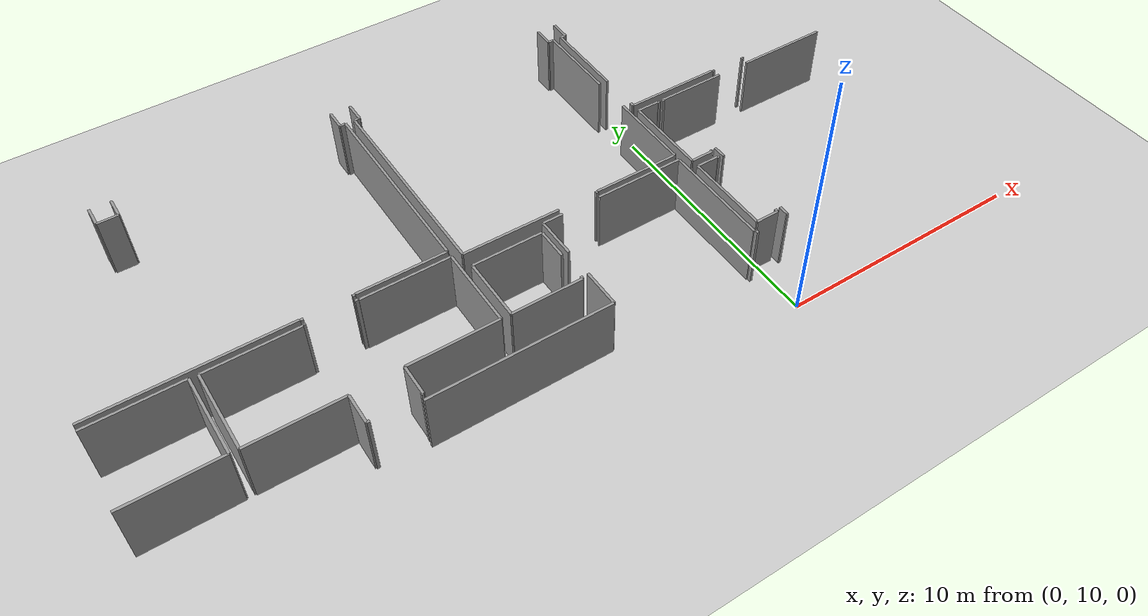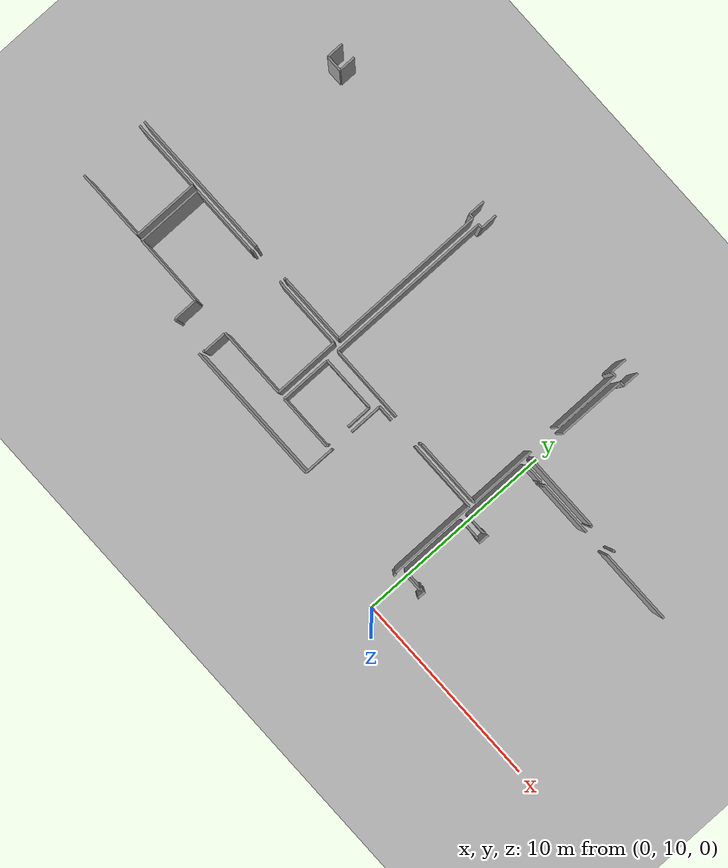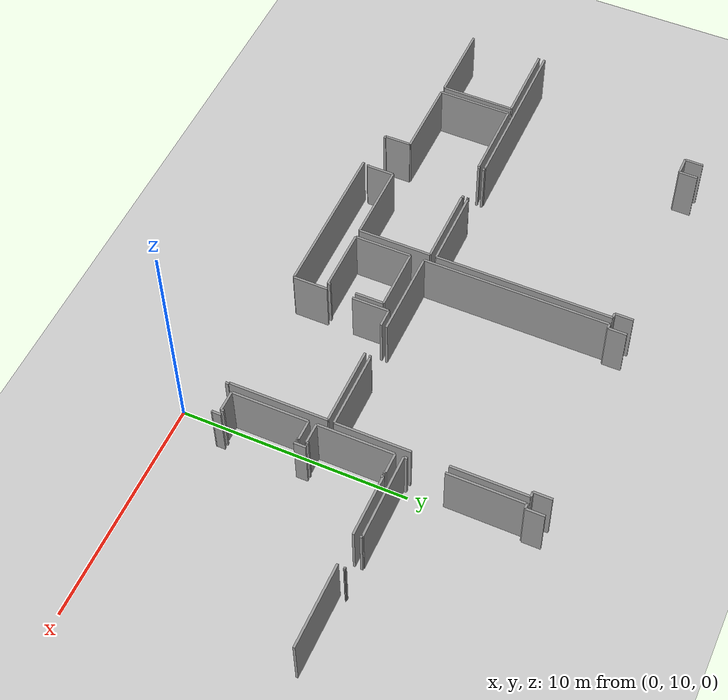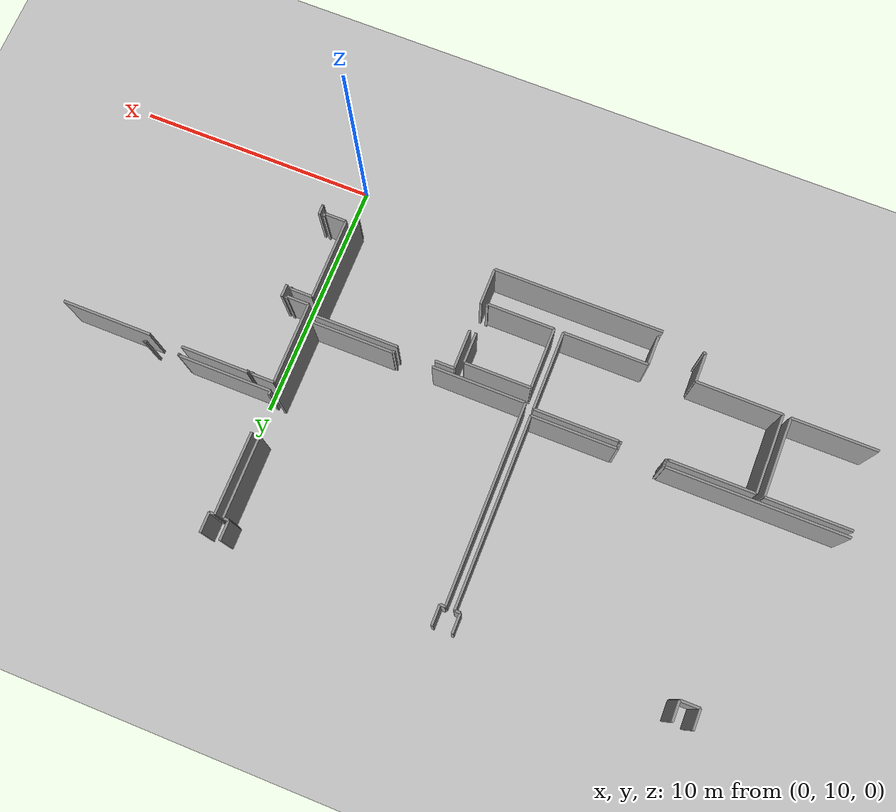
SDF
<sdf version="1.6">
 <world name="default">
  <model name="ground_plane">
   <static>1</static>
   <link name="link">
    <collision name="collision">
     <geometry><plane><normal>0 0 1</normal><size>100 100</size></plane></geometry>
     <surface><friction><ode><mu>100</mu><mu2>50</mu2></ode></friction></surface>
    </collision>
    <visual name="visual">
     <cast_shadows>0</cast_shadows>
     <geometry><plane><normal>0 0 1</normal><size>100 100</size></plane></geometry>
     <material>
      <script><uri>file://media/materials/scripts/gazebo.material</uri><name>Gazebo/Grey</name></script>
     </material>
    </visual>
   </link>
  </model>
  <model name="50045368">
   <static>1</static>
   <link name="Wall_54">
    <collision name="Wall_54_Collision">
     <geometry><box><size>0.822871664549 0.1 2.5</size></box></geometry>
     <pose>0.411435832274 0 1.25 0 0 0</pose>
    </collision>
    <visual name="Wall_54_Visual">
     <pose>0.411435832274 0 1.25 0 0 0</pose>
     <geometry><box><size>0.822871664549 0.1 2.5</size></box></geometry>
     <material>
      <script><uri>file://media/materials/scripts/gazebo.material</uri><name>Gazebo/Grey</name></script>
      <ambient>1 1 1 1</ambient>
     </material>
    </visual>
    <pose>33.4510800508 -0.0 0 0 0 -1.57079632679</pose>
   </link>
   <link name="Wall_55">
    <collision name="Wall_55_Collision">
     <geometry><box><size>0.791994917408 0.1 2.5</size></box></geometry>
     <pose>0.395997458704 0 1.25 0 0 0</pose>
    </collision>
    <visual name="Wall_55_Visual">
     <pose>0.395997458704 0 1.25 0 0 0</pose>
     <geometry><box><size>0.791994917408 0.1 2.5</size></box></geometry>
     <material>
      <script><uri>file://media/materials/scripts/gazebo.material</uri><name>Gazebo/Grey</name></script>
      <ambient>1 1 1 1</ambient>
     </material>
    </visual>
    <pose>33.4510800508 -0.822871664549 0 0 0 0.0</pose>
   </link>
   <link name="Wall_56">
    <collision name="Wall_56_Collision">
     <geometry><box><size>0.821601016518 0.1 2.5</size></box></geometry>
     <pose>0.410800508259 0 1.25 0 0 0</pose>
    </collision>
    <visual name="Wall_56_Visual">
     <pose>0.410800508259 0 1.25 0 0 0</pose>
     <geometry><box><size>0.821601016518 0.1 2.5</size></box></geometry>
     <material>
      <script><uri>file://media/materials/scripts/gazebo.material</uri><name>Gazebo/Grey</name></script>
      <ambient>1 1 1 1</ambient>
     </material>
    </visual>
    <pose>34.2430749682 -0.822871664549 0 0 0 1.57079632679</pose>
   </link>
   <link name="Wall_57">
    <collision name="Wall_57_Collision">
     <geometry><box><size>0.816899618806 0.1 2.5</size></box></geometry>
     <pose>0.408449809403 0 1.25 0 0 0</pose>
    </collision>
    <visual name="Wall_57_Visual">
     <pose>0.408449809403 0 1.25 0 0 0</pose>
     <geometry><box><size>0.816899618806 0.1 2.5</size></box></geometry>
     <material>
      <script><uri>file://media/materials/scripts/gazebo.material</uri><name>Gazebo/Grey</name></script>
      <ambient>1 1 1 1</ambient>
     </material>
    </visual>
    <pose>42.690343075 -0.00127064803049 0 0 0 -1.57079632679</pose>
   </link>
   <link name="Wall_58">
    <collision name="Wall_58_Collision">
     <geometry><box><size>0.228462515883 0.1 2.5</size></box></geometry>
     <pose>0.114231257942 0 1.25 0 0 0</pose>
    </collision>
    <visual name="Wall_58_Visual">
     <pose>0.114231257942 0 1.25 0 0 0</pose>
     <geometry><box><size>0.228462515883 0.1 2.5</size></box></geometry>
     <material>
      <script><uri>file://media/materials/scripts/gazebo.material</uri><name>Gazebo/Grey</name></script>
      <ambient>1 1 1 1</ambient>
     </material>
    </visual>
    <pose>42.690343075 -0.818170266836 0 0 0 0.0</pose>
   </link>
   <link name="Wall_59">
    <collision name="Wall_59_Collision">
     <geometry><box><size>7.85349428208 0.1 2.5</size></box></geometry>
     <pose>3.92674714104 0 1.25 0 0 0</pose>
    </collision>
    <visual name="Wall_59_Visual">
     <pose>3.92674714104 0 1.25 0 0 0</pose>
     <geometry><box><size>7.85349428208 0.1 2.5</size></box></geometry>
     <material>
      <script><uri>file://media/materials/scripts/gazebo.material</uri><name>Gazebo/Grey</name></script>
      <ambient>1 1 1 1</ambient>
     </material>
    </visual>
    <pose>42.9188055909 -0.818170266836 0 0 0 -1.57079632679</pose>
   </link>
   <link name="Wall_60">
    <collision name="Wall_60_Collision">
     <geometry><box><size>3.45794155019 0.1 2.5</size></box></geometry>
     <pose>1.7289707751 0 1.25 0 0 0</pose>
    </collision>
    <visual name="Wall_60_Visual">
     <pose>1.7289707751 0 1.25 0 0 0</pose>
     <geometry><box><size>3.45794155019 0.1 2.5</size></box></geometry>
     <material>
      <script><uri>file://media/materials/scripts/gazebo.material</uri><name>Gazebo/Grey</name></script>
      <ambient>1 1 1 1</ambient>
     </material>
    </visual>
    <pose>42.9188055909 -8.67166454892 0 0 0 3.14159265359</pose>
   </link>
   <link name="Wall_61">
    <collision name="Wall_61_Collision">
     <geometry><box><size>0.0241423125794 0.1 2.5</size></box></geometry>
     <pose>0.0120711562897 0 1.25 0 0 0</pose>
    </collision>
    <visual name="Wall_61_Visual">
     <pose>0.0120711562897 0 1.25 0 0 0</pose>
     <geometry><box><size>0.0241423125794 0.1 2.5</size></box></geometry>
     <material>
      <script><uri>file://media/materials/scripts/gazebo.material</uri><name>Gazebo/Grey</name></script>
      <ambient>1 1 1 1</ambient>
     </material>
    </visual>
    <pose>39.4608640407 -8.67166454892 0 0 0 -1.57079632679</pose>
   </link>
   <link name="Wall_62">
    <collision name="Wall_62_Collision">
     <geometry><box><size>0.0997458703939 0.1 2.5</size></box></geometry>
     <pose>0.0498729351969 0 1.25 0 0 0</pose>
    </collision>
    <visual name="Wall_62_Visual">
     <pose>0.0498729351969 0 1.25 0 0 0</pose>
     <geometry><box><size>0.0997458703939 0.1 2.5</size></box></geometry>
     <material>
      <script><uri>file://media/materials/scripts/gazebo.material</uri><name>Gazebo/Grey</name></script>
      <ambient>1 1 1 1</ambient>
     </material>
    </visual>
    <pose>39.4608640407 -8.6958068615 0 0 0 3.14159265359</pose>
   </link>
   <link name="Wall_63">
    <collision name="Wall_63_Collision">
     <geometry><box><size>0.114612452351 0.1 2.5</size></box></geometry>
     <pose>0.0573062261753 0 1.25 0 0 0</pose>
    </collision>
    <visual name="Wall_63_Visual">
     <pose>0.0573062261753 0 1.25 0 0 0</pose>
     <geometry><box><size>0.114612452351 0.1 2.5</size></box></geometry>
     <material>
      <script><uri>file://media/materials/scripts/gazebo.material</uri><name>Gazebo/Grey</name></script>
      <ambient>1 1 1 1</ambient>
     </material>
    </visual>
    <pose>37.6269377382 -8.6958068615 0 0 0 3.14159265359</pose>
   </link>
   <link name="Wall_64">
    <collision name="Wall_64_Collision">
     <geometry><box><size>0.0235069885642 0.1 2.5</size></box></geometry>
     <pose>0.0117534942821 0 1.25 0 0 0</pose>
    </collision>
    <visual name="Wall_64_Visual">
     <pose>0.0117534942821 0 1.25 0 0 0</pose>
     <geometry><box><size>0.0235069885642 0.1 2.5</size></box></geometry>
     <material>
      <script><uri>file://media/materials/scripts/gazebo.material</uri><name>Gazebo/Grey</name></script>
      <ambient>1 1 1 1</ambient>
     </material>
    </visual>
    <pose>37.5123252859 -8.6958068615 0 0 0 1.57079632679</pose>
   </link>
   <link name="Wall_65">
    <collision name="Wall_65_Collision">
     <geometry><box><size>7.29707750953 0.1 2.5</size></box></geometry>
     <pose>3.64853875476 0 1.25 0 0 0</pose>
    </collision>
    <visual name="Wall_65_Visual">
     <pose>3.64853875476 0 1.25 0 0 0</pose>
     <geometry><box><size>7.29707750953 0.1 2.5</size></box></geometry>
     <material>
      <script><uri>file://media/materials/scripts/gazebo.material</uri><name>Gazebo/Grey</name></script>
      <ambient>1 1 1 1</ambient>
     </material>
    </visual>
    <pose>37.5123252859 -8.67229987294 0 0 0 3.14159265359</pose>
   </link>
   <link name="Wall_77">
    <collision name="Wall_77_Collision">
     <geometry><box><size>3.48005082592 0.1 2.5</size></box></geometry>
     <pose>1.74002541296 0 1.25 0 0 0</pose>
    </collision>
    <visual name="Wall_77_Visual">
     <pose>1.74002541296 0 1.25 0 0 0</pose>
     <geometry><box><size>3.48005082592 0.1 2.5</size></box></geometry>
     <material>
      <script><uri>file://media/materials/scripts/gazebo.material</uri><name>Gazebo/Grey</name></script>
      <ambient>1 1 1 1</ambient>
     </material>
    </visual>
    <pose>30.218043202 -8.94193138501 0 0 0 0.0</pose>
   </link>
   <link name="Wall_78">
    <collision name="Wall_78_Collision">
     <geometry><box><size>3.25641677255 0.1 2.5</size></box></geometry>
     <pose>1.62820838628 0 1.25 0 0 0</pose>
    </collision>
    <visual name="Wall_78_Visual">
     <pose>1.62820838628 0 1.25 0 0 0</pose>
     <geometry><box><size>3.25641677255 0.1 2.5</size></box></geometry>
     <material>
      <script><uri>file://media/materials/scripts/gazebo.material</uri><name>Gazebo/Grey</name></script>
      <ambient>1 1 1 1</ambient>
     </material>
    </visual>
    <pose>33.698094028 -8.94193138501 0 0 0 -1.57079632679</pose>
   </link>
   <link name="Wall_79">
    <collision name="Wall_79_Collision">
     <geometry><box><size>3.49555273189 0.1 2.5</size></box></geometry>
     <pose>1.74777636595 0 1.25 0 0 0</pose>
    </collision>
    <visual name="Wall_79_Visual">
     <pose>1.74777636595 0 1.25 0 0 0</pose>
     <geometry><box><size>3.49555273189 0.1 2.5</size></box></geometry>
     <material>
      <script><uri>file://media/materials/scripts/gazebo.material</uri><name>Gazebo/Grey</name></script>
      <ambient>1 1 1 1</ambient>
     </material>
    </visual>
    <pose>33.698094028 -12.1983481576 0 0 0 3.14159265359</pose>
   </link>
   <link name="Wall_85">
    <collision name="Wall_85_Collision">
     <geometry><box><size>3.25590851334 0.1 2.5</size></box></geometry>
     <pose>1.62795425667 0 1.25 0 0 0</pose>
    </collision>
    <visual name="Wall_85_Visual">
     <pose>1.62795425667 0 1.25 0 0 0</pose>
     <geometry><box><size>3.25590851334 0.1 2.5</size></box></geometry>
     <material>
      <script><uri>file://media/materials/scripts/gazebo.material</uri><name>Gazebo/Grey</name></script>
      <ambient>1 1 1 1</ambient>
     </material>
    </visual>
    <pose>34.0094027954 -12.214866582 0 0 0 1.57079632679</pose>
   </link>
   <link name="Wall_86">
    <collision name="Wall_86_Collision">
     <geometry><box><size>3.49529860229 0.1 2.5</size></box></geometry>
     <pose>1.74764930114 0 1.25 0 0 0</pose>
    </collision>
    <visual name="Wall_86_Visual">
     <pose>1.74764930114 0 1.25 0 0 0</pose>
     <geometry><box><size>3.49529860229 0.1 2.5</size></box></geometry>
     <material>
      <script><uri>file://media/materials/scripts/gazebo.material</uri><name>Gazebo/Grey</name></script>
      <ambient>1 1 1 1</ambient>
     </material>
    </visual>
    <pose>34.0094027954 -8.95895806861 0 0 0 0.0</pose>
   </link>
   <link name="Wall_87">
    <collision name="Wall_87_Collision">
     <geometry><box><size>0.0326556543837 0.1 2.5</size></box></geometry>
     <pose>0.0163278271919 0 1.25 0 0 0</pose>
    </collision>
    <visual name="Wall_87_Visual">
     <pose>0.0163278271919 0 1.25 0 0 0</pose>
     <geometry><box><size>0.0326556543837 0.1 2.5</size></box></geometry>
     <material>
      <script><uri>file://media/materials/scripts/gazebo.material</uri><name>Gazebo/Grey</name></script>
      <ambient>1 1 1 1</ambient>
     </material>
    </visual>
    <pose>37.5047013977 -8.95895806861 0 0 0 1.57079632679</pose>
   </link>
   <link name="Wall_88">
    <collision name="Wall_88_Collision">
     <geometry><box><size>0.103684879288 0.1 2.5</size></box></geometry>
     <pose>0.0518424396442 0 1.25 0 0 0</pose>
    </collision>
    <visual name="Wall_88_Visual">
     <pose>0.0518424396442 0 1.25 0 0 0</pose>
     <geometry><box><size>0.103684879288 0.1 2.5</size></box></geometry>
     <material>
      <script><uri>file://media/materials/scripts/gazebo.material</uri><name>Gazebo/Grey</name></script>
      <ambient>1 1 1 1</ambient>
     </material>
    </visual>
    <pose>37.5047013977 -8.92630241423 0 0 0 0.0</pose>
   </link>
   <link name="Wall_89">
    <collision name="Wall_89_Collision">
     <geometry><box><size>0.120457433291 0.1 2.5</size></box></geometry>
     <pose>0.0602287166455 0 1.25 0 0 0</pose>
    </collision>
    <visual name="Wall_89_Visual">
     <pose>0.0602287166455 0 1.25 0 0 0</pose>
     <geometry><box><size>0.120457433291 0.1 2.5</size></box></geometry>
     <material>
      <script><uri>file://media/materials/scripts/gazebo.material</uri><name>Gazebo/Grey</name></script>
      <ambient>1 1 1 1</ambient>
     </material>
    </visual>
    <pose>39.3407878018 -8.92630241423 0 0 0 0.0</pose>
   </link>
   <link name="Wall_90">
    <collision name="Wall_90_Collision">
     <geometry><box><size>0.0259212198221 0.1 2.5</size></box></geometry>
     <pose>0.0129606099111 0 1.25 0 0 0</pose>
    </collision>
    <visual name="Wall_90_Visual">
     <pose>0.0129606099111 0 1.25 0 0 0</pose>
     <geometry><box><size>0.0259212198221 0.1 2.5</size></box></geometry>
     <material>
      <script><uri>file://media/materials/scripts/gazebo.material</uri><name>Gazebo/Grey</name></script>
      <ambient>1 1 1 1</ambient>
     </material>
    </visual>
    <pose>39.4612452351 -8.92630241423 0 0 0 -1.57079632679</pose>
   </link>
   <link name="Wall_91">
    <collision name="Wall_91_Collision">
     <geometry><box><size>3.45285895807 0.1 2.5</size></box></geometry>
     <pose>1.72642947903 0 1.25 0 0 0</pose>
    </collision>
    <visual name="Wall_91_Visual">
     <pose>1.72642947903 0 1.25 0 0 0</pose>
     <geometry><box><size>3.45285895807 0.1 2.5</size></box></geometry>
     <material>
      <script><uri>file://media/materials/scripts/gazebo.material</uri><name>Gazebo/Grey</name></script>
      <ambient>1 1 1 1</ambient>
     </material>
    </visual>
    <pose>39.4612452351 -8.95222363405 0 0 0 0.0</pose>
   </link>
   <link name="Wall_92">
    <collision name="Wall_92_Collision">
     <geometry><box><size>3.25705209657 0.1 2.5</size></box></geometry>
     <pose>1.62852604828 0 1.25 0 0 0</pose>
    </collision>
    <visual name="Wall_92_Visual">
     <pose>1.62852604828 0 1.25 0 0 0</pose>
     <geometry><box><size>3.25705209657 0.1 2.5</size></box></geometry>
     <material>
      <script><uri>file://media/materials/scripts/gazebo.material</uri><name>Gazebo/Grey</name></script>
      <ambient>1 1 1 1</ambient>
     </material>
    </visual>
    <pose>42.9141041931 -8.95222363405 0 0 0 -1.57079632679</pose>
   </link>
   <link name="Wall_93">
    <collision name="Wall_93_Collision">
     <geometry><box><size>3.47458703939 0.1 2.5</size></box></geometry>
     <pose>1.7372935197 0 1.25 0 0 0</pose>
    </collision>
    <visual name="Wall_93_Visual">
     <pose>1.7372935197 0 1.25 0 0 0</pose>
     <geometry><box><size>3.47458703939 0.1 2.5</size></box></geometry>
     <material>
      <script><uri>file://media/materials/scripts/gazebo.material</uri><name>Gazebo/Grey</name></script>
      <ambient>1 1 1 1</ambient>
     </material>
    </visual>
    <pose>42.9141041931 -12.2092757306 0 0 0 3.14159265359</pose>
   </link>
   <link name="Wall_94">
    <collision name="Wall_94_Collision">
     <geometry><box><size>1.21410419314 0.1 2.5</size></box></geometry>
     <pose>0.607052096569 0 1.25 0 0 0</pose>
    </collision>
    <visual name="Wall_94_Visual">
     <pose>0.607052096569 0 1.25 0 0 0</pose>
     <geometry><box><size>1.21410419314 0.1 2.5</size></box></geometry>
     <material>
      <script><uri>file://media/materials/scripts/gazebo.material</uri><name>Gazebo/Grey</name></script>
      <ambient>1 1 1 1</ambient>
     </material>
    </visual>
    <pose>39.4395171537 -12.2092757306 0 0 0 -1.57079632679</pose>
   </link>
   <link name="Wall_95">
    <collision name="Wall_95_Collision">
     <geometry><box><size>0.0761118170267 0.1 2.5</size></box></geometry>
     <pose>0.0380559085133 0 1.25 0 0 0</pose>
    </collision>
    <visual name="Wall_95_Visual">
     <pose>0.0380559085133 0 1.25 0 0 0</pose>
     <geometry><box><size>0.0761118170267 0.1 2.5</size></box></geometry>
     <material>
      <script><uri>file://media/materials/scripts/gazebo.material</uri><name>Gazebo/Grey</name></script>
      <ambient>1 1 1 1</ambient>
     </material>
    </visual>
    <pose>39.4395171537 -13.4233799238 0 0 0 3.14159265359</pose>
   </link>
   <link name="Wall_96">
    <collision name="Wall_96_Collision">
     <geometry><box><size>0.111944091487 0.1 2.5</size></box></geometry>
     <pose>0.0559720457433 0 1.25 0 0 0</pose>
    </collision>
    <visual name="Wall_96_Visual">
     <pose>0.0559720457433 0 1.25 0 0 0</pose>
     <geometry><box><size>0.111944091487 0.1 2.5</size></box></geometry>
     <material>
      <script><uri>file://media/materials/scripts/gazebo.material</uri><name>Gazebo/Grey</name></script>
      <ambient>1 1 1 1</ambient>
     </material>
    </visual>
    <pose>37.6331639136 -13.4233799238 0 0 0 3.14159265359</pose>
   </link>
   <link name="Wall_97">
    <collision name="Wall_97_Collision">
     <geometry><box><size>1.18945362135 0.1 2.5</size></box></geometry>
     <pose>0.594726810673 0 1.25 0 0 0</pose>
    </collision>
    <visual name="Wall_97_Visual">
     <pose>0.594726810673 0 1.25 0 0 0</pose>
     <geometry><box><size>1.18945362135 0.1 2.5</size></box></geometry>
     <material>
      <script><uri>file://media/materials/scripts/gazebo.material</uri><name>Gazebo/Grey</name></script>
      <ambient>1 1 1 1</ambient>
     </material>
    </visual>
    <pose>37.5212198221 -13.4233799238 0 0 0 1.57079632679</pose>
   </link>
   <link name="Wall_98">
    <collision name="Wall_98_Collision">
     <geometry><box><size>3.51186874781 0.1 2.5</size></box></geometry>
     <pose>1.75593437391 0 1.25 0 0 0</pose>
    </collision>
    <visual name="Wall_98_Visual">
     <pose>1.75593437391 0 1.25 0 0 0</pose>
     <geometry><box><size>3.51186874781 0.1 2.5</size></box></geometry>
     <material>
      <script><uri>file://media/materials/scripts/gazebo.material</uri><name>Gazebo/Grey</name></script>
      <ambient>1 1 1 1</ambient>
     </material>
    </visual>
    <pose>37.5212198221 -12.2339263024 0 0 0 3.13616539665</pose>
   </link>
   <link name="Wall_99">
    <collision name="Wall_99_Collision">
     <geometry><box><size>8.24345616264 0.1 2.5</size></box></geometry>
     <pose>4.12172808132 0 1.25 0 0 0</pose>
    </collision>
    <visual name="Wall_99_Visual">
     <pose>4.12172808132 0 1.25 0 0 0</pose>
     <geometry><box><size>8.24345616264 0.1 2.5</size></box></geometry>
     <material>
      <script><uri>file://media/materials/scripts/gazebo.material</uri><name>Gazebo/Grey</name></script>
      <ambient>1 1 1 1</ambient>
     </material>
    </visual>
    <pose>43.2833545108 -9.06861499365 0 0 0 1.57079632679</pose>
   </link>
   <link name="Wall_100">
    <collision name="Wall_100_Collision">
     <geometry><box><size>0.213087674714 0.1 2.5</size></box></geometry>
     <pose>0.106543837357 0 1.25 0 0 0</pose>
    </collision>
    <visual name="Wall_100_Visual">
     <pose>0.106543837357 0 1.25 0 0 0</pose>
     <geometry><box><size>0.213087674714 0.1 2.5</size></box></geometry>
     <material>
      <script><uri>file://media/materials/scripts/gazebo.material</uri><name>Gazebo/Grey</name></script>
      <ambient>1 1 1 1</ambient>
     </material>
    </visual>
    <pose>43.2833545108 -0.825158831004 0 0 0 0.0</pose>
   </link>
   <link name="Wall_101">
    <collision name="Wall_101_Collision">
     <geometry><box><size>0.821219822109 0.1 2.5</size></box></geometry>
     <pose>0.410609911055 0 1.25 0 0 0</pose>
    </collision>
    <visual name="Wall_101_Visual">
     <pose>0.410609911055 0 1.25 0 0 0</pose>
     <geometry><box><size>0.821219822109 0.1 2.5</size></box></geometry>
     <material>
      <script><uri>file://media/materials/scripts/gazebo.material</uri><name>Gazebo/Grey</name></script>
      <ambient>1 1 1 1</ambient>
     </material>
    </visual>
    <pose>43.4964421855 -0.825158831004 0 0 0 1.57079632679</pose>
   </link>
   <link name="Wall_102">
    <collision name="Wall_102_Collision">
     <geometry><box><size>0.812706480305 0.1 2.5</size></box></geometry>
     <pose>0.406353240152 0 1.25 0 0 0</pose>
    </collision>
    <visual name="Wall_102_Visual">
     <pose>0.406353240152 0 1.25 0 0 0</pose>
     <geometry><box><size>0.812706480305 0.1 2.5</size></box></geometry>
     <material>
      <script><uri>file://media/materials/scripts/gazebo.material</uri><name>Gazebo/Grey</name></script>
      <ambient>1 1 1 1</ambient>
     </material>
    </visual>
    <pose>51.9452350699 -0.00393900889453 0 0 0 -1.57079632679</pose>
   </link>
   <link name="Wall_103">
    <collision name="Wall_103_Collision">
     <geometry><box><size>0.230368487929 0.1 2.5</size></box></geometry>
     <pose>0.115184243964 0 1.25 0 0 0</pose>
    </collision>
    <visual name="Wall_103_Visual">
     <pose>0.115184243964 0 1.25 0 0 0</pose>
     <geometry><box><size>0.230368487929 0.1 2.5</size></box></geometry>
     <material>
      <script><uri>file://media/materials/scripts/gazebo.material</uri><name>Gazebo/Grey</name></script>
      <ambient>1 1 1 1</ambient>
     </material>
    </visual>
    <pose>51.9452350699 -0.816645489199 0 0 0 0.0</pose>
   </link>
   <link name="Wall_104">
    <collision name="Wall_104_Collision">
     <geometry><box><size>3.35590851334 0.1 2.5</size></box></geometry>
     <pose>1.67795425667 0 1.25 0 0 0</pose>
    </collision>
    <visual name="Wall_104_Visual">
     <pose>1.67795425667 0 1.25 0 0 0</pose>
     <geometry><box><size>3.35590851334 0.1 2.5</size></box></geometry>
     <material>
      <script><uri>file://media/materials/scripts/gazebo.material</uri><name>Gazebo/Grey</name></script>
      <ambient>1 1 1 1</ambient>
     </material>
    </visual>
    <pose>52.1756035578 -0.816645489199 0 0 0 -1.57079632679</pose>
   </link>
   <link name="Wall_105">
    <collision name="Wall_105_Collision">
     <geometry><box><size>3.30940279543 0.1 2.5</size></box></geometry>
     <pose>1.65470139771 0 1.25 0 0 0</pose>
    </collision>
    <visual name="Wall_105_Visual">
     <pose>1.65470139771 0 1.25 0 0 0</pose>
     <geometry><box><size>3.30940279543 0.1 2.5</size></box></geometry>
     <material>
      <script><uri>file://media/materials/scripts/gazebo.material</uri><name>Gazebo/Grey</name></script>
      <ambient>1 1 1 1</ambient>
     </material>
    </visual>
    <pose>52.1756035578 -5.75082592122 0 0 0 -1.57079632679</pose>
   </link>
   <link name="Wall_106">
    <collision name="Wall_106_Collision">
     <geometry><box><size>3.41194409149 0.1 2.5</size></box></geometry>
     <pose>1.70597204574 0 1.25 0 0 0</pose>
    </collision>
    <visual name="Wall_106_Visual">
     <pose>1.70597204574 0 1.25 0 0 0</pose>
     <geometry><box><size>3.41194409149 0.1 2.5</size></box></geometry>
     <material>
      <script><uri>file://media/materials/scripts/gazebo.material</uri><name>Gazebo/Grey</name></script>
      <ambient>1 1 1 1</ambient>
     </material>
    </visual>
    <pose>52.1756035578 -9.06022871665 0 0 0 3.14159265359</pose>
   </link>
   <link name="Wall_107">
    <collision name="Wall_107_Collision">
     <geometry><box><size>0.0271918678526 0.1 2.5</size></box></geometry>
     <pose>0.0135959339263 0 1.25 0 0 0</pose>
    </collision>
    <visual name="Wall_107_Visual">
     <pose>0.0135959339263 0 1.25 0 0 0</pose>
     <geometry><box><size>0.0271918678526 0.1 2.5</size></box></geometry>
     <material>
      <script><uri>file://media/materials/scripts/gazebo.material</uri><name>Gazebo/Grey</name></script>
      <ambient>1 1 1 1</ambient>
     </material>
    </visual>
    <pose>48.7636594663 -9.06022871665 0 0 0 -1.57079632679</pose>
   </link>
   <link name="Wall_108">
    <collision name="Wall_108_Collision">
     <geometry><box><size>0.0969504447268 0.1 2.5</size></box></geometry>
     <pose>0.0484752223634 0 1.25 0 0 0</pose>
    </collision>
    <visual name="Wall_108_Visual">
     <pose>0.0484752223634 0 1.25 0 0 0</pose>
     <geometry><box><size>0.0969504447268 0.1 2.5</size></box></geometry>
     <material>
      <script><uri>file://media/materials/scripts/gazebo.material</uri><name>Gazebo/Grey</name></script>
      <ambient>1 1 1 1</ambient>
     </material>
    </visual>
    <pose>48.7636594663 -9.0874205845 0 0 0 3.14159265359</pose>
   </link>
   <link name="Wall_109">
    <collision name="Wall_109_Collision">
     <geometry><box><size>3.84350216917 0.1 2.5</size></box></geometry>
     <pose>1.92175108458 0 1.25 0 0 0</pose>
    </collision>
    <visual name="Wall_109_Visual">
     <pose>1.92175108458 0 1.25 0 0 0</pose>
     <geometry><box><size>3.84350216917 0.1 2.5</size></box></geometry>
     <material>
      <script><uri>file://media/materials/scripts/gazebo.material</uri><name>Gazebo/Grey</name></script>
      <ambient>1 1 1 1</ambient>
     </material>
    </visual>
    <pose>47.1268106734 -9.0874205845 0 0 0 3.13669980715</pose>
   </link>
   <link name="Wall_110">
    <collision name="Wall_110_Collision">
     <geometry><box><size>2.52274459975 0.1 2.5</size></box></geometry>
     <pose>1.26137229987 0 1.25 0 0 0</pose>
    </collision>
    <visual name="Wall_110_Visual">
     <pose>1.26137229987 0 1.25 0 0 0</pose>
     <geometry><box><size>2.52274459975 0.1 2.5</size></box></geometry>
     <material>
      <script><uri>file://media/materials/scripts/gazebo.material</uri><name>Gazebo/Grey</name></script>
      <ambient>1 1 1 1</ambient>
     </material>
    </visual>
    <pose>43.2942820839 -12.2153748412 0 0 0 1.57079632679</pose>
   </link>
   <link name="Wall_111">
    <collision name="Wall_111_Collision">
     <geometry><box><size>2.75298602287 0.1 2.5</size></box></geometry>
     <pose>1.37649301144 0 1.25 0 0 0</pose>
    </collision>
    <visual name="Wall_111_Visual">
     <pose>1.37649301144 0 1.25 0 0 0</pose>
     <geometry><box><size>2.75298602287 0.1 2.5</size></box></geometry>
     <material>
      <script><uri>file://media/materials/scripts/gazebo.material</uri><name>Gazebo/Grey</name></script>
      <ambient>1 1 1 1</ambient>
     </material>
    </visual>
    <pose>43.2942820839 -9.69263024142 0 0 0 0.0</pose>
   </link>
   <link name="Wall_112">
    <collision name="Wall_112_Collision">
     <geometry><box><size>1.26569250318 0.1 2.5</size></box></geometry>
     <pose>0.632846251588 0 1.25 0 0 0</pose>
    </collision>
    <visual name="Wall_112_Visual">
     <pose>0.632846251588 0 1.25 0 0 0</pose>
     <geometry><box><size>1.26569250318 0.1 2.5</size></box></geometry>
     <material>
      <script><uri>file://media/materials/scripts/gazebo.material</uri><name>Gazebo/Grey</name></script>
      <ambient>1 1 1 1</ambient>
     </material>
    </visual>
    <pose>46.0472681067 -9.69263024142 0 0 0 -1.57079632679</pose>
   </link>
   <link name="Wall_113">
    <collision name="Wall_113_Collision">
     <geometry><box><size>0.116137229987 0.1 2.5</size></box></geometry>
     <pose>0.0580686149936 0 1.25 0 0 0</pose>
    </collision>
    <visual name="Wall_113_Visual">
     <pose>0.0580686149936 0 1.25 0 0 0</pose>
     <geometry><box><size>0.116137229987 0.1 2.5</size></box></geometry>
     <material>
      <script><uri>file://media/materials/scripts/gazebo.material</uri><name>Gazebo/Grey</name></script>
      <ambient>1 1 1 1</ambient>
     </material>
    </visual>
    <pose>46.0472681067 -12.1039390089 0 0 0 -1.57079632679</pose>
   </link>
   <link name="Wall_114">
    <collision name="Wall_114_Collision">
     <geometry><box><size>2.75299003726 0.1 2.5</size></box></geometry>
     <pose>1.37649501863 0 1.25 0 0 0</pose>
    </collision>
    <visual name="Wall_114_Visual">
     <pose>1.37649501863 0 1.25 0 0 0</pose>
     <geometry><box><size>2.75299003726 0.1 2.5</size></box></geometry>
     <material>
      <script><uri>file://media/materials/scripts/gazebo.material</uri><name>Gazebo/Grey</name></script>
      <ambient>1 1 1 1</ambient>
     </material>
    </visual>
    <pose>46.0472681067 -12.2200762389 0 0 0 3.1398849104</pose>
   </link>
   <link name="Wall_126">
    <collision name="Wall_126_Collision">
     <geometry><box><size>6.98208386277 0.1 2.5</size></box></geometry>
     <pose>3.49104193139 0 1.25 0 0 0</pose>
    </collision>
    <visual name="Wall_126_Visual">
     <pose>3.49104193139 0 1.25 0 0 0</pose>
     <geometry><box><size>6.98208386277 0.1 2.5</size></box></geometry>
     <material>
      <script><uri>file://media/materials/scripts/gazebo.material</uri><name>Gazebo/Grey</name></script>
      <ambient>1 1 1 1</ambient>
     </material>
    </visual>
    <pose>39.3326556544 -13.659339263 0 0 0 0.0</pose>
   </link>
   <link name="Wall_127">
    <collision name="Wall_127_Collision">
     <geometry><box><size>1.53265565438 0.1 2.5</size></box></geometry>
     <pose>0.766327827192 0 1.25 0 0 0</pose>
    </collision>
    <visual name="Wall_127_Visual">
     <pose>0.766327827192 0 1.25 0 0 0</pose>
     <geometry><box><size>1.53265565438 0.1 2.5</size></box></geometry>
     <material>
      <script><uri>file://media/materials/scripts/gazebo.material</uri><name>Gazebo/Grey</name></script>
      <ambient>1 1 1 1</ambient>
     </material>
    </visual>
    <pose>46.3147395172 -13.659339263 0 0 0 1.57079632679</pose>
   </link>
   <link name="Wall_128">
    <collision name="Wall_128_Collision">
     <geometry><box><size>1.64345616264 0.1 2.5</size></box></geometry>
     <pose>0.821728081321 0 1.25 0 0 0</pose>
    </collision>
    <visual name="Wall_128_Visual">
     <pose>0.821728081321 0 1.25 0 0 0</pose>
     <geometry><box><size>1.64345616264 0.1 2.5</size></box></geometry>
     <material>
      <script><uri>file://media/materials/scripts/gazebo.material</uri><name>Gazebo/Grey</name></script>
      <ambient>1 1 1 1</ambient>
     </material>
    </visual>
    <pose>46.3147395172 -10.9780177891 0 0 0 1.57079632679</pose>
   </link>
   <link name="Wall_129">
    <collision name="Wall_129_Collision">
     <geometry><box><size>0.796315120712 0.1 2.5</size></box></geometry>
     <pose>0.398157560356 0 1.25 0 0 0</pose>
    </collision>
    <visual name="Wall_129_Visual">
     <pose>0.398157560356 0 1.25 0 0 0</pose>
     <geometry><box><size>0.796315120712 0.1 2.5</size></box></geometry>
     <material>
      <script><uri>file://media/materials/scripts/gazebo.material</uri><name>Gazebo/Grey</name></script>
      <ambient>1 1 1 1</ambient>
     </material>
    </visual>
    <pose>46.3147395172 -9.33456162643 0 0 0 0.0</pose>
   </link>
   <link name="Wall_130">
    <collision name="Wall_130_Collision">
     <geometry><box><size>3.51016518424 0.1 2.5</size></box></geometry>
     <pose>1.75508259212 0 1.25 0 0 0</pose>
    </collision>
    <visual name="Wall_130_Visual">
     <pose>1.75508259212 0 1.25 0 0 0</pose>
     <geometry><box><size>3.51016518424 0.1 2.5</size></box></geometry>
     <material>
      <script><uri>file://media/materials/scripts/gazebo.material</uri><name>Gazebo/Grey</name></script>
      <ambient>1 1 1 1</ambient>
     </material>
    </visual>
    <pose>48.6491740788 -9.33456162643 0 0 0 0.0</pose>
   </link>
   <link name="Wall_131">
    <collision name="Wall_131_Collision">
     <geometry><box><size>4.33074968234 0.1 2.5</size></box></geometry>
     <pose>2.16537484117 0 1.25 0 0 0</pose>
    </collision>
    <visual name="Wall_131_Visual">
     <pose>2.16537484117 0 1.25 0 0 0</pose>
     <geometry><box><size>4.33074968234 0.1 2.5</size></box></geometry>
     <material>
      <script><uri>file://media/materials/scripts/gazebo.material</uri><name>Gazebo/Grey</name></script>
      <ambient>1 1 1 1</ambient>
     </material>
    </visual>
    <pose>52.159339263 -9.33456162643 0 0 0 -1.57079632679</pose>
   </link>
   <link name="Wall_132">
    <collision name="Wall_132_Collision">
     <geometry><box><size>0.0481575603558 0.1 2.5</size></box></geometry>
     <pose>0.0240787801779 0 1.25 0 0 0</pose>
    </collision>
    <visual name="Wall_132_Visual">
     <pose>0.0240787801779 0 1.25 0 0 0</pose>
     <geometry><box><size>0.0481575603558 0.1 2.5</size></box></geometry>
     <material>
      <script><uri>file://media/materials/scripts/gazebo.material</uri><name>Gazebo/Grey</name></script>
      <ambient>1 1 1 1</ambient>
     </material>
    </visual>
    <pose>52.159339263 -13.6653113088 0 0 0 0.0</pose>
   </link>
   <link name="Wall_133">
    <collision name="Wall_133_Collision">
     <geometry><box><size>0.144472681067 0.1 2.5</size></box></geometry>
     <pose>0.0722363405337 0 1.25 0 0 0</pose>
    </collision>
    <visual name="Wall_133_Visual">
     <pose>0.0722363405337 0 1.25 0 0 0</pose>
     <geometry><box><size>0.144472681067 0.1 2.5</size></box></geometry>
     <material>
      <script><uri>file://media/materials/scripts/gazebo.material</uri><name>Gazebo/Grey</name></script>
      <ambient>1 1 1 1</ambient>
     </material>
    </visual>
    <pose>52.2074968234 -13.6653113088 0 0 0 -1.57079632679</pose>
   </link>
   <link name="Wall_170">
    <collision name="Wall_170_Collision">
     <geometry><box><size>3.36480304956 0.1 2.5</size></box></geometry>
     <pose>1.68240152478 0 1.25 0 0 0</pose>
    </collision>
    <visual name="Wall_170_Visual">
     <pose>1.68240152478 0 1.25 0 0 0</pose>
     <geometry><box><size>3.36480304956 0.1 2.5</size></box></geometry>
     <material>
      <script><uri>file://media/materials/scripts/gazebo.material</uri><name>Gazebo/Grey</name></script>
      <ambient>1 1 1 1</ambient>
     </material>
    </visual>
    <pose>52.5246505718 -9.65451080051 0 0 0 1.57079632679</pose>
   </link>
   <link name="Wall_171">
    <collision name="Wall_171_Collision">
     <geometry><box><size>0.909911054638 0.1 2.5</size></box></geometry>
     <pose>0.454955527319 0 1.25 0 0 0</pose>
    </collision>
    <visual name="Wall_171_Visual">
     <pose>0.454955527319 0 1.25 0 0 0</pose>
     <geometry><box><size>0.909911054638 0.1 2.5</size></box></geometry>
     <material>
      <script><uri>file://media/materials/scripts/gazebo.material</uri><name>Gazebo/Grey</name></script>
      <ambient>1 1 1 1</ambient>
     </material>
    </visual>
    <pose>52.5246505718 -6.28970775095 0 0 0 0.0</pose>
   </link>
   <link name="Wall_172">
    <collision name="Wall_172_Collision">
     <geometry><box><size>0.0831003811944 0.1 2.5</size></box></geometry>
     <pose>0.0415501905972 0 1.25 0 0 0</pose>
    </collision>
    <visual name="Wall_172_Visual">
     <pose>0.0415501905972 0 1.25 0 0 0</pose>
     <geometry><box><size>0.0831003811944 0.1 2.5</size></box></geometry>
     <material>
      <script><uri>file://media/materials/scripts/gazebo.material</uri><name>Gazebo/Grey</name></script>
      <ambient>1 1 1 1</ambient>
     </material>
    </visual>
    <pose>53.4345616264 -6.28970775095 0 0 0 -1.57079632679</pose>
   </link>
   <link name="Wall_173">
    <collision name="Wall_173_Collision">
     <geometry><box><size>0.103557814485 0.1 2.5</size></box></geometry>
     <pose>0.0517789072427 0 1.25 0 0 0</pose>
    </collision>
    <visual name="Wall_173_Visual">
     <pose>0.0517789072427 0 1.25 0 0 0</pose>
     <geometry><box><size>0.103557814485 0.1 2.5</size></box></geometry>
     <material>
      <script><uri>file://media/materials/scripts/gazebo.material</uri><name>Gazebo/Grey</name></script>
      <ambient>1 1 1 1</ambient>
     </material>
    </visual>
    <pose>53.4345616264 -9.55133418043 0 0 0 -1.57079632679</pose>
   </link>
   <link name="Wall_174">
    <collision name="Wall_174_Collision">
     <geometry><box><size>0.909911134486 0.1 2.5</size></box></geometry>
     <pose>0.454955567243 0 1.25 0 0 0</pose>
    </collision>
    <visual name="Wall_174_Visual">
     <pose>0.454955567243 0 1.25 0 0 0</pose>
     <geometry><box><size>0.909911134486 0.1 2.5</size></box></geometry>
     <material>
      <script><uri>file://media/materials/scripts/gazebo.material</uri><name>Gazebo/Grey</name></script>
      <ambient>1 1 1 1</ambient>
     </material>
    </visual>
    <pose>53.4345616264 -9.65489199492 0 0 0 3.14117371771</pose>
   </link>
   <link name="Wall_175">
    <collision name="Wall_175_Collision">
     <geometry><box><size>3.37979669632 0.1 2.5</size></box></geometry>
     <pose>1.68989834816 0 1.25 0 0 0</pose>
    </collision>
    <visual name="Wall_175_Visual">
     <pose>1.68989834816 0 1.25 0 0 0</pose>
     <geometry><box><size>3.37979669632 0.1 2.5</size></box></geometry>
     <material>
      <script><uri>file://media/materials/scripts/gazebo.material</uri><name>Gazebo/Grey</name></script>
      <ambient>1 1 1 1</ambient>
     </material>
    </visual>
    <pose>52.5219822109 -13.3739517154 0 0 0 1.57079632679</pose>
   </link>
   <link name="Wall_176">
    <collision name="Wall_176_Collision">
     <geometry><box><size>0.910038119441 0.1 2.5</size></box></geometry>
     <pose>0.45501905972 0 1.25 0 0 0</pose>
    </collision>
    <visual name="Wall_176_Visual">
     <pose>0.45501905972 0 1.25 0 0 0</pose>
     <geometry><box><size>0.910038119441 0.1 2.5</size></box></geometry>
     <material>
      <script><uri>file://media/materials/scripts/gazebo.material</uri><name>Gazebo/Grey</name></script>
      <ambient>1 1 1 1</ambient>
     </material>
    </visual>
    <pose>52.5219822109 -9.99415501906 0 0 0 0.0</pose>
   </link>
   <link name="Wall_177">
    <collision name="Wall_177_Collision">
     <geometry><box><size>0.0785260482846 0.1 2.5</size></box></geometry>
     <pose>0.0392630241423 0 1.25 0 0 0</pose>
    </collision>
    <visual name="Wall_177_Visual">
     <pose>0.0392630241423 0 1.25 0 0 0</pose>
     <geometry><box><size>0.0785260482846 0.1 2.5</size></box></geometry>
     <material>
      <script><uri>file://media/materials/scripts/gazebo.material</uri><name>Gazebo/Grey</name></script>
      <ambient>1 1 1 1</ambient>
     </material>
    </visual>
    <pose>53.4320203304 -9.99415501906 0 0 0 -1.57079632679</pose>
   </link>
   <link name="Wall_178">
    <collision name="Wall_178_Collision">
     <geometry><box><size>0.124523506989 0.1 2.5</size></box></geometry>
     <pose>0.0622617534943 0 1.25 0 0 0</pose>
    </collision>
    <visual name="Wall_178_Visual">
     <pose>0.0622617534943 0 1.25 0 0 0</pose>
     <geometry><box><size>0.124523506989 0.1 2.5</size></box></geometry>
     <material>
      <script><uri>file://media/materials/scripts/gazebo.material</uri><name>Gazebo/Grey</name></script>
      <ambient>1 1 1 1</ambient>
     </material>
    </visual>
    <pose>53.4320203304 -13.2514612452 0 0 0 -1.57079632679</pose>
   </link>
   <link name="Wall_179">
    <collision name="Wall_179_Collision">
     <geometry><box><size>0.910040390353 0.1 2.5</size></box></geometry>
     <pose>0.455020195177 0 1.25 0 0 0</pose>
    </collision>
    <visual name="Wall_179_Visual">
     <pose>0.455020195177 0 1.25 0 0 0</pose>
     <geometry><box><size>0.910040390353 0.1 2.5</size></box></geometry>
     <material>
      <script><uri>file://media/materials/scripts/gazebo.material</uri><name>Gazebo/Grey</name></script>
      <ambient>1 1 1 1</ambient>
     </material>
    </visual>
    <pose>53.4320203304 -13.3759847522 0 0 0 3.13935864446</pose>
   </link>
   <link name="Wall_180">
    <collision name="Wall_180_Collision">
     <geometry><box><size>0.372681067344 0.1 2.5</size></box></geometry>
     <pose>0.186340533672 0 1.25 0 0 0</pose>
    </collision>
    <visual name="Wall_180_Visual">
     <pose>0.186340533672 0 1.25 0 0 0</pose>
     <geometry><box><size>0.372681067344 0.1 2.5</size></box></geometry>
     <material>
      <script><uri>file://media/materials/scripts/gazebo.material</uri><name>Gazebo/Grey</name></script>
      <ambient>1 1 1 1</ambient>
     </material>
    </visual>
    <pose>53.6376111817 -13.6383735705 0 0 0 1.57079632679</pose>
   </link>
   <link name="Wall_181">
    <collision name="Wall_181_Collision">
     <geometry><box><size>0.516518424396 0.1 2.5</size></box></geometry>
     <pose>0.258259212198 0 1.25 0 0 0</pose>
    </collision>
    <visual name="Wall_181_Visual">
     <pose>0.258259212198 0 1.25 0 0 0</pose>
     <geometry><box><size>0.516518424396 0.1 2.5</size></box></geometry>
     <material>
      <script><uri>file://media/materials/scripts/gazebo.material</uri><name>Gazebo/Grey</name></script>
      <ambient>1 1 1 1</ambient>
     </material>
    </visual>
    <pose>53.6376111817 -10.0894536213 0 0 0 1.57079632679</pose>
   </link>
   <link name="Wall_182">
    <collision name="Wall_182_Collision">
     <geometry><box><size>0.0911054637865 0.1 2.5</size></box></geometry>
     <pose>0.0455527318933 0 1.25 0 0 0</pose>
    </collision>
    <visual name="Wall_182_Visual">
     <pose>0.0455527318933 0 1.25 0 0 0</pose>
     <geometry><box><size>0.0911054637865 0.1 2.5</size></box></geometry>
     <material>
      <script><uri>file://media/materials/scripts/gazebo.material</uri><name>Gazebo/Grey</name></script>
      <ambient>1 1 1 1</ambient>
     </material>
    </visual>
    <pose>53.6376111817 -6.38221092757 0 0 0 1.57079632679</pose>
   </link>
   <link name="Wall_183">
    <collision name="Wall_183_Collision">
     <geometry><box><size>2.75921219822 0.1 2.5</size></box></geometry>
     <pose>1.37960609911 0 1.25 0 0 0</pose>
    </collision>
    <visual name="Wall_183_Visual">
     <pose>1.37960609911 0 1.25 0 0 0</pose>
     <geometry><box><size>2.75921219822 0.1 2.5</size></box></geometry>
     <material>
      <script><uri>file://media/materials/scripts/gazebo.material</uri><name>Gazebo/Grey</name></script>
      <ambient>1 1 1 1</ambient>
     </material>
    </visual>
    <pose>53.6376111817 -6.29110546379 0 0 0 0.0</pose>
   </link>
   <link name="Wall_184">
    <collision name="Wall_184_Collision">
     <geometry><box><size>3.69339263024 0.1 2.5</size></box></geometry>
     <pose>1.84669631512 0 1.25 0 0 0</pose>
    </collision>
    <visual name="Wall_184_Visual">
     <pose>1.84669631512 0 1.25 0 0 0</pose>
     <geometry><box><size>3.69339263024 0.1 2.5</size></box></geometry>
     <material>
      <script><uri>file://media/materials/scripts/gazebo.material</uri><name>Gazebo/Grey</name></script>
      <ambient>1 1 1 1</ambient>
     </material>
    </visual>
    <pose>57.7443456163 -6.29110546379 0 0 0 0.0</pose>
   </link>
   <link name="Wall_195">
    <collision name="Wall_195_Collision">
     <geometry><box><size>0.0489676165066 0.1 2.5</size></box></geometry>
     <pose>0.0244838082533 0 1.25 0 0 0</pose>
    </collision>
    <visual name="Wall_195_Visual">
     <pose>0.0244838082533 0 1.25 0 0 0</pose>
     <geometry><box><size>0.0489676165066 0.1 2.5</size></box></geometry>
     <material>
      <script><uri>file://media/materials/scripts/gazebo.material</uri><name>Gazebo/Grey</name></script>
      <ambient>1 1 1 1</ambient>
     </material>
    </visual>
    <pose>53.6354510801 -13.6872935197 0 0 0 1.52666914656</pose>
   </link>
   <link name="Wall_196">
    <collision name="Wall_196_Collision">
     <geometry><box><size>0.219695044473 0.1 2.5</size></box></geometry>
     <pose>0.109847522236 0 1.25 0 0 0</pose>
    </collision>
    <visual name="Wall_196_Visual">
     <pose>0.109847522236 0 1.25 0 0 0</pose>
     <geometry><box><size>0.219695044473 0.1 2.5</size></box></geometry>
     <material>
      <script><uri>file://media/materials/scripts/gazebo.material</uri><name>Gazebo/Grey</name></script>
      <ambient>1 1 1 1</ambient>
     </material>
    </visual>
    <pose>52.5246505718 -0.826810673443 0 0 0 0.0</pose>
   </link>
   <link name="Wall_197">
    <collision name="Wall_197_Collision">
     <geometry><box><size>0.818297331639 0.1 2.5</size></box></geometry>
     <pose>0.40914866582 0 1.25 0 0 0</pose>
    </collision>
    <visual name="Wall_197_Visual">
     <pose>0.40914866582 0 1.25 0 0 0</pose>
     <geometry><box><size>0.818297331639 0.1 2.5</size></box></geometry>
     <material>
      <script><uri>file://media/materials/scripts/gazebo.material</uri><name>Gazebo/Grey</name></script>
      <ambient>1 1 1 1</ambient>
     </material>
    </visual>
    <pose>52.7443456163 -0.826810673443 0 0 0 1.57079632679</pose>
   </link>
   <link name="Wall_202">
    <collision name="Wall_202_Collision">
     <geometry><box><size>0.0302414231258 0.1 2.5</size></box></geometry>
     <pose>0.0151207115629 0 1.25 0 0 0</pose>
    </collision>
    <visual name="Wall_202_Visual">
     <pose>0.0151207115629 0 1.25 0 0 0</pose>
     <geometry><box><size>0.0302414231258 0.1 2.5</size></box></geometry>
     <material>
      <script><uri>file://media/materials/scripts/gazebo.material</uri><name>Gazebo/Grey</name></script>
      <ambient>1 1 1 1</ambient>
     </material>
    </visual>
    <pose>57.8404066074 -5.93811944091 0 0 0 -1.57079632679</pose>
   </link>
   <link name="Wall_203">
    <collision name="Wall_203_Collision">
     <geometry><box><size>0.0900889453621 0.1 2.5</size></box></geometry>
     <pose>0.0450444726811 0 1.25 0 0 0</pose>
    </collision>
    <visual name="Wall_203_Visual">
     <pose>0.0450444726811 0 1.25 0 0 0</pose>
     <geometry><box><size>0.0900889453621 0.1 2.5</size></box></geometry>
     <material>
      <script><uri>file://media/materials/scripts/gazebo.material</uri><name>Gazebo/Grey</name></script>
      <ambient>1 1 1 1</ambient>
     </material>
    </visual>
    <pose>57.8404066074 -5.96836086404 0 0 0 3.14159265359</pose>
   </link>
   <link name="Wall_204">
    <collision name="Wall_204_Collision">
     <geometry><box><size>0.0942820838628 0.1 2.5</size></box></geometry>
     <pose>0.0471410419314 0 1.25 0 0 0</pose>
    </collision>
    <visual name="Wall_204_Visual">
     <pose>0.0471410419314 0 1.25 0 0 0</pose>
     <geometry><box><size>0.0942820838628 0.1 2.5</size></box></geometry>
     <material>
      <script><uri>file://media/materials/scripts/gazebo.material</uri><name>Gazebo/Grey</name></script>
      <ambient>1 1 1 1</ambient>
     </material>
    </visual>
    <pose>56.4095298602 -5.96836086404 0 0 0 3.14159265359</pose>
   </link>
   <link name="Wall_205">
    <collision name="Wall_205_Collision">
     <geometry><box><size>0.0321473951715 0.1 2.5</size></box></geometry>
     <pose>0.0160736975858 0 1.25 0 0 0</pose>
    </collision>
    <visual name="Wall_205_Visual">
     <pose>0.0160736975858 0 1.25 0 0 0</pose>
     <geometry><box><size>0.0321473951715 0.1 2.5</size></box></geometry>
     <material>
      <script><uri>file://media/materials/scripts/gazebo.material</uri><name>Gazebo/Grey</name></script>
      <ambient>1 1 1 1</ambient>
     </material>
    </visual>
    <pose>56.3152477764 -5.96836086404 0 0 0 1.57079632679</pose>
   </link>
   <link name="Wall_206">
    <collision name="Wall_206_Collision">
     <geometry><box><size>3.80165184244 0.1 2.5</size></box></geometry>
     <pose>1.90082592122 0 1.25 0 0 0</pose>
    </collision>
    <visual name="Wall_206_Visual">
     <pose>1.90082592122 0 1.25 0 0 0</pose>
     <geometry><box><size>3.80165184244 0.1 2.5</size></box></geometry>
     <material>
      <script><uri>file://media/materials/scripts/gazebo.material</uri><name>Gazebo/Grey</name></script>
      <ambient>1 1 1 1</ambient>
     </material>
    </visual>
    <pose>56.3152477764 -5.93621346887 0 0 0 3.14159265359</pose>
   </link>
   <link name="Wall_207">
    <collision name="Wall_207_Collision">
     <geometry><box><size>0.166327827192 0.1 2.5</size></box></geometry>
     <pose>0.0831639135959 0 1.25 0 0 0</pose>
    </collision>
    <visual name="Wall_207_Visual">
     <pose>0.0831639135959 0 1.25 0 0 0</pose>
     <geometry><box><size>0.166327827192 0.1 2.5</size></box></geometry>
     <material>
      <script><uri>file://media/materials/scripts/gazebo.material</uri><name>Gazebo/Grey</name></script>
      <ambient>1 1 1 1</ambient>
     </material>
    </visual>
    <pose>52.5135959339 -5.93621346887 0 0 0 1.57079632679</pose>
   </link>
   <link name="Wall_208">
    <collision name="Wall_208_Collision">
     <geometry><box><size>3.36939551708 0.1 2.5</size></box></geometry>
     <pose>1.68469775854 0 1.25 0 0 0</pose>
    </collision>
    <visual name="Wall_208_Visual">
     <pose>1.68469775854 0 1.25 0 0 0</pose>
     <geometry><box><size>3.36939551708 0.1 2.5</size></box></geometry>
     <material>
      <script><uri>file://media/materials/scripts/gazebo.material</uri><name>Gazebo/Grey</name></script>
      <ambient>1 1 1 1</ambient>
     </material>
    </visual>
    <pose>52.5135959339 -4.19618805591 0 0 0 1.56751542444</pose>
   </link>
   <pose>-52.8 25.6383100381 0 0 0 0</pose>
  </model>
 </world>
</sdf>
